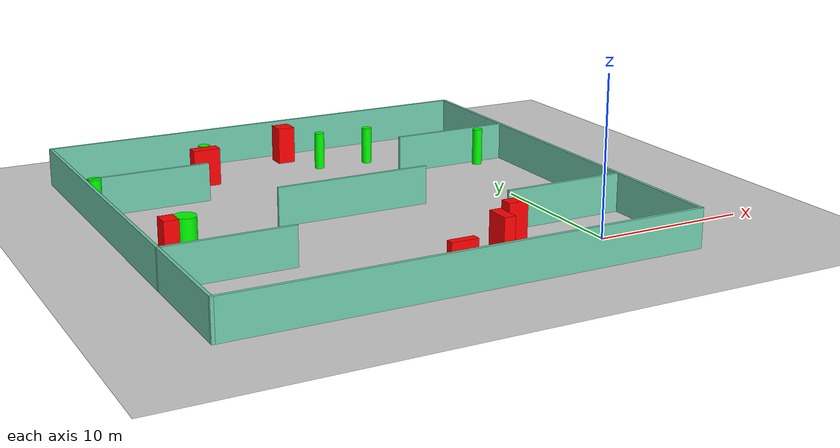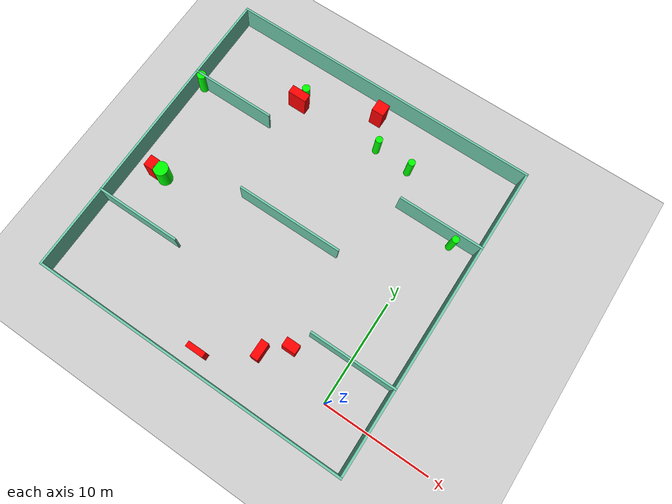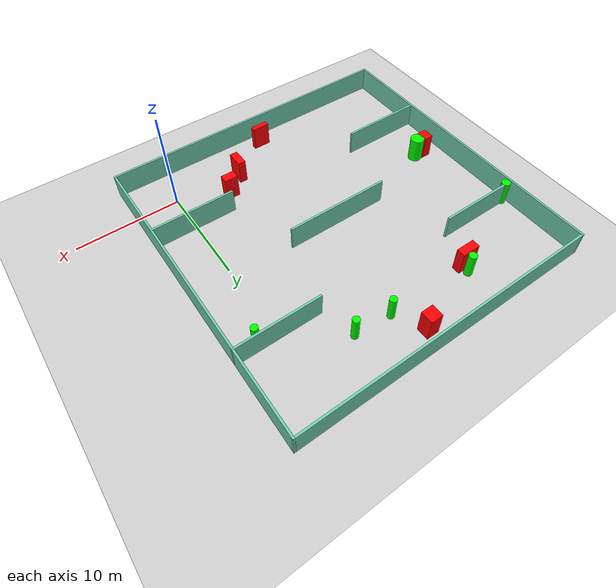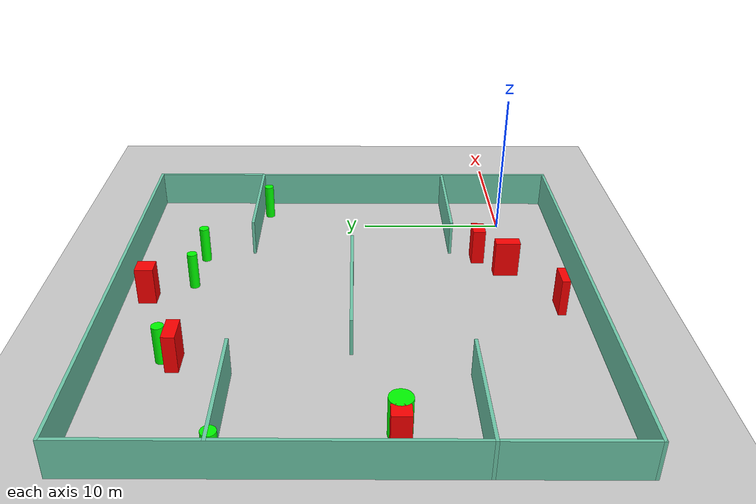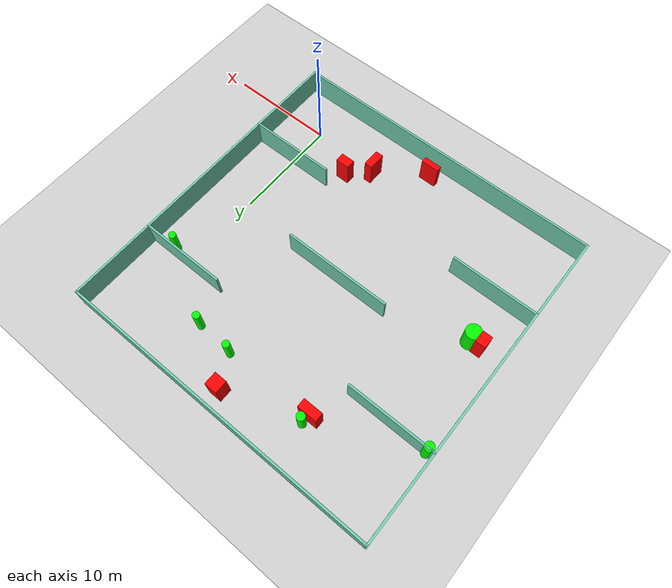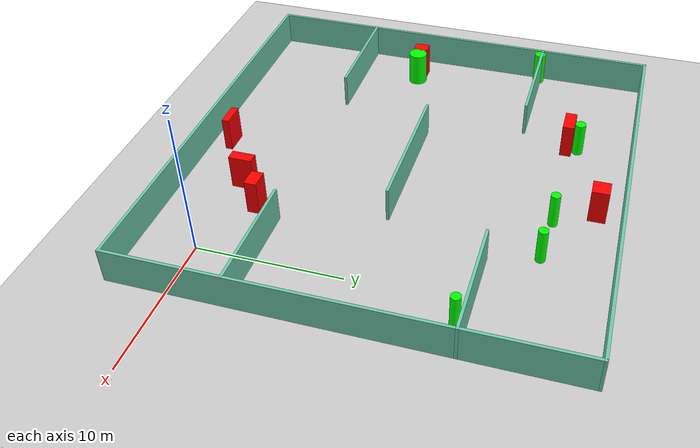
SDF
<sdf version="1.7">
 <world name="default">
  <light name="sun" type="directional">
   <pose>0 0 10 0 -0 0</pose>
   <diffuse>0.8 0.8 0.8 1</diffuse>
   <specular>0.2 0.2 0.2 1</specular>
   <attenuation>
    <range>1000</range>
    <constant>0.9</constant>
    <linear>0.01</linear>
    <quadratic>0.001</quadratic>
   </attenuation>
   <direction>-0.5 0.1 -0.9</direction>
   <spot><inner_angle>0</inner_angle><outer_angle>0</outer_angle><falloff>0</falloff></spot>
  </light>
  <model name="ground_plane">
   <static>1</static>
   <link name="link">
    <collision name="collision">
     <geometry><plane><normal>0 0 1</normal><size>100 100</size></plane></geometry>
     <surface>
      <contact><collide_bitmask>65535</collide_bitmask></contact>
      <friction><ode><mu>100</mu><mu2>50</mu2></ode></friction>
     </surface>
    </collision>
    <visual name="visual">
     <cast_shadows>0</cast_shadows>
     <geometry><plane><normal>0 0 1</normal><size>100 100</size></plane></geometry>
     <material>
      <script><uri>file://media/materials/scripts/gazebo.material</uri><name>Gazebo/Grey</name></script>
     </material>
    </visual>
   </link>
  </model>
  <gravity>0 0 -9.8</gravity>
  <magnetic_field>6e-06 2.3e-05 -4.2e-05</magnetic_field>
  <atmosphere type="adiabatic"/>
  <physics type="ode">
   <max_step_size>0.001</max_step_size>
   <real_time_factor>1</real_time_factor>
   <real_time_update_rate>1000</real_time_update_rate>
  </physics>
  <scene><ambient>0.4 0.4 0.4 1</ambient><background>0.7 0.7 0.7 1</background><shadows>1</shadows></scene>
  <spherical_coordinates>
   <surface_model>EARTH_WGS84</surface_model>
   <latitude_deg>0</latitude_deg>
   <longitude_deg>0</longitude_deg>
   <elevation>0</elevation>
   <heading_deg>0</heading_deg>
  </spherical_coordinates>
  <model name="my_base_walls">
   <link name="Wall_10">
    <collision name="Wall_10_Collision">
     <geometry><box><size>8.2 0.2 2.5</size></box></geometry>
     <pose>0 0 1.25 0 -0 0</pose>
    </collision>
    <visual name="Wall_10_Visual">
     <pose>0 0 1.25 0 -0 0</pose>
     <geometry><box><size>8.2 0.2 2.5</size></box></geometry>
     <material>
      <script><uri>file://media/materials/scripts/gazebo.material</uri><name>Gazebo/Grey</name></script>
      <ambient>0.435294 0.796078 0.67451 1</ambient>
     </material>
     <meta><layer>0</layer></meta>
    </visual>
    <pose>-11 -7 0 0 -0 0</pose>
   </link>
   <link name="Wall_12">
    <collision name="Wall_12_Collision">
     <geometry><box><size>8.2 0.2 2.5</size></box></geometry>
     <pose>0 0 1.25 0 -0 0</pose>
    </collision>
    <visual name="Wall_12_Visual">
     <pose>0 0 1.25 0 -0 0</pose>
     <geometry><box><size>8.2 0.2 2.5</size></box></geometry>
     <material>
      <script><uri>file://media/materials/scripts/gazebo.material</uri><name>Gazebo/Grey</name></script>
      <ambient>0.435294 0.796078 0.67451 1</ambient>
     </material>
     <meta><layer>0</layer></meta>
    </visual>
    <pose>-11 7 0 0 -0 0</pose>
   </link>
   <link name="Wall_14">
    <collision name="Wall_14_Collision">
     <geometry><box><size>8.2 0.2 2.5</size></box></geometry>
     <pose>0 0 1.25 0 -0 0</pose>
    </collision>
    <visual name="Wall_14_Visual">
     <pose>0 0 1.25 0 -0 0</pose>
     <geometry><box><size>8.2 0.2 2.5</size></box></geometry>
     <material>
      <script><uri>file://media/materials/scripts/gazebo.material</uri><name>Gazebo/Grey</name></script>
      <ambient>0.435294 0.796078 0.67451 1</ambient>
     </material>
     <meta><layer>0</layer></meta>
    </visual>
    <pose>11 7 0 0 -0 3.14159</pose>
   </link>
   <link name="Wall_16">
    <collision name="Wall_16_Collision">
     <geometry><box><size>10.2 0.2 2.5</size></box></geometry>
     <pose>0 0 1.25 0 -0 0</pose>
    </collision>
    <visual name="Wall_16_Visual">
     <pose>0 0 1.25 0 -0 0</pose>
     <geometry><box><size>10.2 0.2 2.5</size></box></geometry>
     <material>
      <script><uri>file://media/materials/scripts/gazebo.material</uri><name>Gazebo/Grey</name></script>
      <ambient>0.435294 0.796078 0.67451 1</ambient>
     </material>
     <meta><layer>0</layer></meta>
    </visual>
    <pose>0 0 0 0 -0 3.14159</pose>
   </link>
   <link name="Wall_2">
    <collision name="Wall_2_Collision">
     <geometry><box><size>30.2 0.2 2.5</size></box></geometry>
     <pose>0 0 1.25 0 -0 0</pose>
    </collision>
    <visual name="Wall_2_Visual">
     <pose>0 0 1.25 0 -0 0</pose>
     <geometry><box><size>30.2 0.2 2.5</size></box></geometry>
     <material>
      <script><uri>file://media/materials/scripts/gazebo.material</uri><name>Gazebo/Grey</name></script>
      <ambient>0.435294 0.796078 0.67451 1</ambient>
     </material>
     <meta><layer>0</layer></meta>
    </visual>
    <pose>0 -15 0 0 -0 3.14159</pose>
   </link>
   <link name="Wall_3">
    <collision name="Wall_3_Collision">
     <geometry><box><size>30.2 0.2 2.5</size></box></geometry>
     <pose>0 0 1.25 0 -0 0</pose>
    </collision>
    <visual name="Wall_3_Visual">
     <pose>0 0 1.25 0 -0 0</pose>
     <geometry><box><size>30.2 0.2 2.5</size></box></geometry>
     <material>
      <script><uri>file://media/materials/scripts/gazebo.material</uri><name>Gazebo/Grey</name></script>
      <ambient>0.435294 0.796078 0.67451 1</ambient>
     </material>
     <meta><layer>0</layer></meta>
    </visual>
    <pose>-15 0 0 0 -0 1.5708</pose>
   </link>
   <link name="Wall_4">
    <collision name="Wall_4_Collision">
     <geometry><box><size>30.2 0.2 2.5</size></box></geometry>
     <pose>0 0 1.25 0 -0 0</pose>
    </collision>
    <visual name="Wall_4_Visual">
     <pose>0 0 1.25 0 -0 0</pose>
     <geometry><box><size>30.2 0.2 2.5</size></box></geometry>
     <material>
      <script><uri>file://media/materials/scripts/gazebo.material</uri><name>Gazebo/Grey</name></script>
      <ambient>0.435294 0.796078 0.67451 1</ambient>
     </material>
     <meta><layer>0</layer></meta>
    </visual>
    <pose>0 15 0 0 -0 0</pose>
   </link>
   <link name="Wall_6">
    <collision name="Wall_6_Collision">
     <geometry><box><size>30.2 0.2 2.5</size></box></geometry>
     <pose>0 0 1.25 0 -0 0</pose>
    </collision>
    <visual name="Wall_6_Visual">
     <pose>0 0 1.25 0 -0 0</pose>
     <geometry><box><size>30.2 0.2 2.5</size></box></geometry>
     <material>
      <script><uri>file://media/materials/scripts/gazebo.material</uri><name>Gazebo/Grey</name></script>
      <ambient>0.435294 0.796078 0.67451 1</ambient>
     </material>
     <meta><layer>0</layer></meta>
    </visual>
    <pose>15 0 0 0 -0 1.5708</pose>
   </link>
   <link name="Wall_8">
    <collision name="Wall_8_Collision">
     <geometry><box><size>8.2 0.2 2.5</size></box></geometry>
     <pose>0 0 1.25 0 -0 0</pose>
    </collision>
    <visual name="Wall_8_Visual">
     <pose>0 0 1.25 0 -0 0</pose>
     <geometry><box><size>8.2 0.2 2.5</size></box></geometry>
     <material>
      <script><uri>file://media/materials/scripts/gazebo.material</uri><name>Gazebo/Grey</name></script>
      <ambient>0.435294 0.796078 0.67451 1</ambient>
     </material>
     <meta><layer>0</layer></meta>
    </visual>
    <pose>11 -7 0 0 -0 3.14159</pose>
   </link>
   <static>1</static>
   <pose>-11 11 0 0 -0 0</pose>
  </model>
  <model name="cylinder1">
   <static>1</static>
   <link name="link">
    <inertial>
     <mass>1</mass>
     <inertia><ixx>0.5</ixx><ixy>0</ixy><ixz>0</ixz><iyy>0.5</iyy><iyz>0</iyz><izz>1</izz></inertia>
    </inertial>
    <collision name="collision">
     <geometry><cylinder><radius>0.332232</radius><length>2.5</length></cylinder></geometry>
    </collision>
    <visual name="visual">
     <geometry><cylinder><radius>0.332232</radius><length>2.5</length></cylinder></geometry>
     <material>
      <ambient>0 1 0 1</ambient>
      <diffuse>0 1 0 1</diffuse>
      <specular>0.1 0.1 0.1 1</specular>
      <emissive>0 0 0 0</emissive>
     </material>
    </visual>
   </link>
   <pose>-8.47386 21.5723 1.25 0 -0 0</pose>
  </model>
  <model name="cylinder2">
   <static>1</static>
   <link name="link">
    <inertial>
     <mass>1</mass>
     <inertia><ixx>0.5</ixx><ixy>0</ixy><ixz>0</ixz><iyy>0.5</iyy><iyz>0</iyz><izz>1</izz></inertia>
    </inertial>
    <collision name="collision">
     <geometry><cylinder><radius>0.426376</radius><length>2.5</length></cylinder></geometry>
    </collision>
    <visual name="visual">
     <geometry><cylinder><radius>0.426376</radius><length>2.5</length></cylinder></geometry>
     <material>
      <ambient>0 1 0 1</ambient>
      <diffuse>0 1 0 1</diffuse>
      <specular>0.1 0.1 0.1 1</specular>
      <emissive>0 0 0 0</emissive>
     </material>
    </visual>
   </link>
   <pose>-25.4181 17.8833 1.25 0 -0 0</pose>
  </model>
  <model name="cylinder3">
   <static>1</static>
   <link name="link">
    <inertial>
     <mass>1</mass>
     <inertia><ixx>0.5</ixx><ixy>0</ixy><ixz>0</ixz><iyy>0.5</iyy><iyz>0</iyz><izz>1</izz></inertia>
    </inertial>
    <collision name="collision">
     <geometry><cylinder><radius>0.333375</radius><length>2.5</length></cylinder></geometry>
    </collision>
    <visual name="visual">
     <geometry><cylinder><radius>0.333375</radius><length>2.5</length></cylinder></geometry>
     <material>
      <ambient>0 1 0 1</ambient>
      <diffuse>0 1 0 1</diffuse>
      <specular>0.1 0.1 0.1 1</specular>
      <emissive>0 0 0 0</emissive>
     </material>
    </visual>
   </link>
   <pose>-4.94687 21.3186 1.25 0 -0 0</pose>
  </model>
  <model name="cylinder4">
   <static>1</static>
   <link name="link">
    <inertial>
     <mass>1</mass>
     <inertia><ixx>0.5</ixx><ixy>0</ixy><ixz>0</ixz><iyy>0.5</iyy><iyz>0</iyz><izz>1</izz></inertia>
    </inertial>
    <collision name="collision">
     <geometry><cylinder><radius>0.377336</radius><length>2.5</length></cylinder></geometry>
    </collision>
    <visual name="visual">
     <geometry><cylinder><radius>0.377336</radius><length>2.5</length></cylinder></geometry>
     <material>
      <ambient>0 1 0 1</ambient>
      <diffuse>0 1 0 1</diffuse>
      <specular>0.1 0.1 0.1 1</specular>
      <emissive>0 0 0 0</emissive>
     </material>
    </visual>
   </link>
   <pose>-16.6939 22.1588 1.25 0 -0 0</pose>
  </model>
  <model name="cylinder5">
   <static>1</static>
   <link name="link">
    <inertial>
     <mass>1</mass>
     <inertia><ixx>0.5</ixx><ixy>0</ixy><ixz>0</ixz><iyy>0.5</iyy><iyz>0</iyz><izz>1</izz></inertia>
    </inertial>
    <collision name="collision">
     <geometry><cylinder><radius>0.688394</radius><length>2.5</length></cylinder></geometry>
    </collision>
    <visual name="visual">
     <geometry><cylinder><radius>0.688394</radius><length>2.5</length></cylinder></geometry>
     <material>
      <ambient>0 1 0 1</ambient>
      <diffuse>0 1 0 1</diffuse>
      <specular>0.1 0.1 0.1 1</specular>
      <emissive>0 0 0 0</emissive>
     </material>
    </visual>
   </link>
   <pose>-22.896 8.43146 1.25 0 -0 0</pose>
  </model>
  <model name="cylinder6">
   <static>1</static>
   <link name="link">
    <inertial>
     <mass>1</mass>
     <inertia><ixx>0.5</ixx><ixy>0</ixy><ixz>0</ixz><iyy>0.5</iyy><iyz>0</iyz><izz>1</izz></inertia>
    </inertial>
    <collision name="collision">
     <geometry><cylinder><radius>0.331621</radius><length>2.5</length></cylinder></geometry>
    </collision>
    <visual name="visual">
     <geometry><cylinder><radius>0.331621</radius><length>2.5</length></cylinder></geometry>
     <material>
      <ambient>0 1 0 1</ambient>
      <diffuse>0 1 0 1</diffuse>
      <specular>0.1 0.1 0.1 1</specular>
      <emissive>0 0 0 0</emissive>
     </material>
    </visual>
   </link>
   <pose>1.77127 17.391 1.25 0 -0 0</pose>
  </model>
  <model name="box1">
   <static>1</static>
   <link name="link">
    <inertial>
     <mass>1</mass>
     <inertia><ixx>0.083</ixx><ixy>0</ixy><ixz>0</ixz><iyy>0.083</iyy><iyz>0</iyz><izz>0.083</izz></inertia>
    </inertial>
    <collision name="collision"><geometry><box><size>1.81393 0.804929 2.5</size></box></geometry></collision>
    <visual name="visual">
     <geometry><box><size>1.81393 0.804929 2.5</size></box></geometry>
     <material>
      <ambient>1 0 0 1</ambient>
      <diffuse>1 0 0 1</diffuse>
      <specular>0.1 0.1 0.1 1</specular>
      <emissive>0 0 0 0</emissive>
     </material>
    </visual>
    <sensor name="my_contact" type="contact">
     <contact><collision>box_collision</collision><topic>__default_topic__</topic></contact>
    </sensor>
   </link>
   <pose>-16.9261 21.3595 1.25 0 -0 0</pose>
  </model>
  <model name="box2">
   <static>1</static>
   <link name="link">
    <inertial>
     <mass>1</mass>
     <inertia><ixx>0.083</ixx><ixy>0</ixy><ixz>0</ixz><iyy>0.083</iyy><iyz>0</iyz><izz>0.083</izz></inertia>
    </inertial>
    <collision name="collision"><geometry><box><size>1.69403 0.521597 2.5</size></box></geometry></collision>
    <visual name="visual">
     <geometry><box><size>1.69403 0.521597 2.5</size></box></geometry>
     <material>
      <ambient>1 0 0 1</ambient>
      <diffuse>1 0 0 1</diffuse>
      <specular>0.1 0.1 0.1 1</specular>
      <emissive>0 0 0 0</emissive>
     </material>
    </visual>
    <sensor name="my_contact" type="contact">
     <contact><collision>box_collision</collision><topic>__default_topic__</topic></contact>
    </sensor>
   </link>
   <pose>-11.0045 -2.42399 1.25 0 -0 0</pose>
  </model>
  <model name="box3">
   <static>1</static>
   <link name="link">
    <inertial>
     <mass>1</mass>
     <inertia><ixx>0.083</ixx><ixy>0</ixy><ixz>0</ixz><iyy>0.083</iyy><iyz>0</iyz><izz>0.083</izz></inertia>
    </inertial>
    <collision name="collision"><geometry><box><size>0.93694 1.1125 2.5</size></box></geometry></collision>
    <visual name="visual">
     <geometry><box><size>0.93694 1.1125 2.5</size></box></geometry>
     <material>
      <ambient>1 0 0 1</ambient>
      <diffuse>1 0 0 1</diffuse>
      <specular>0.1 0.1 0.1 1</specular>
      <emissive>0 0 0 0</emissive>
     </material>
    </visual>
    <sensor name="my_contact" type="contact">
     <contact><collision>box_collision</collision><topic>__default_topic__</topic></contact>
    </sensor>
   </link>
   <pose>-23.8898 8.45284 1.25 0 -0 0</pose>
  </model>
  <model name="box4">
   <static>1</static>
   <link name="link">
    <inertial>
     <mass>1</mass>
     <inertia><ixx>0.083</ixx><ixy>0</ixy><ixz>0</ixz><iyy>0.083</iyy><iyz>0</iyz><izz>0.083</izz></inertia>
    </inertial>
    <collision name="collision"><geometry><box><size>1.30443 0.858605 2.5</size></box></geometry></collision>
    <visual name="visual">
     <geometry><box><size>1.30443 0.858605 2.5</size></box></geometry>
     <material>
      <ambient>1 0 0 1</ambient>
      <diffuse>1 0 0 1</diffuse>
      <specular>0.1 0.1 0.1 1</specular>
      <emissive>0 0 0 0</emissive>
     </material>
    </visual>
    <sensor name="my_contact" type="contact">
     <contact><collision>box_collision</collision><topic>__default_topic__</topic></contact>
    </sensor>
   </link>
   <pose>-4.78617 2.17646 1.25 0 -0 0</pose>
  </model>
  <model name="box5">
   <static>1</static>
   <link name="link">
    <inertial>
     <mass>1</mass>
     <inertia><ixx>0.083</ixx><ixy>0</ixy><ixz>0</ixz><iyy>0.083</iyy><iyz>0</iyz><izz>0.083</izz></inertia>
    </inertial>
    <collision name="collision"><geometry><box><size>0.747305 1.65194 2.5</size></box></geometry></collision>
    <visual name="visual">
     <geometry><box><size>0.747305 1.65194 2.5</size></box></geometry>
     <material>
      <ambient>1 0 0 1</ambient>
      <diffuse>1 0 0 1</diffuse>
      <specular>0.1 0.1 0.1 1</specular>
      <emissive>0 0 0 0</emissive>
     </material>
    </visual>
    <sensor name="my_contact" type="contact">
     <contact><collision>box_collision</collision><topic>__default_topic__</topic></contact>
    </sensor>
   </link>
   <pose>-6.7045 0.452914 1.25 0 -0 0</pose>
  </model>
  <model name="box6">
   <static>1</static>
   <link name="link">
    <inertial>
     <mass>1</mass>
     <inertia><ixx>0.083</ixx><ixy>0</ixy><ixz>0</ixz><iyy>0.083</iyy><iyz>0</iyz><izz>0.083</izz></inertia>
    </inertial>
    <collision name="collision"><geometry><box><size>1.18212 1.19096 2.5</size></box></geometry></collision>
    <visual name="visual">
     <geometry><box><size>1.18212 1.19096 2.5</size></box></geometry>
     <material>
      <ambient>1 0 0 1</ambient>
      <diffuse>1 0 0 1</diffuse>
      <specular>0.1 0.1 0.1 1</specular>
      <emissive>0 0 0 0</emissive>
     </material>
    </visual>
    <sensor name="my_contact" type="contact">
     <contact><collision>box_collision</collision><topic>__default_topic__</topic></contact>
    </sensor>
   </link>
   <pose>-10.0107 24.3212 1.25 0 -0 0</pose>
  </model>
 </world>
</sdf>
